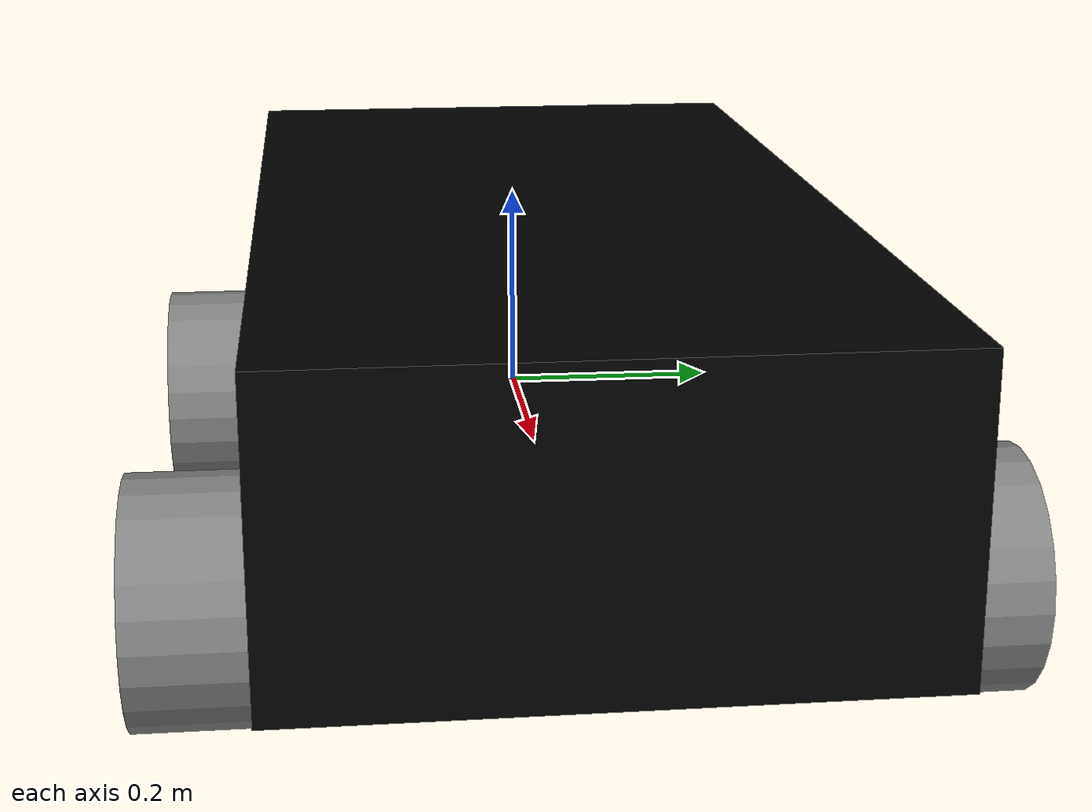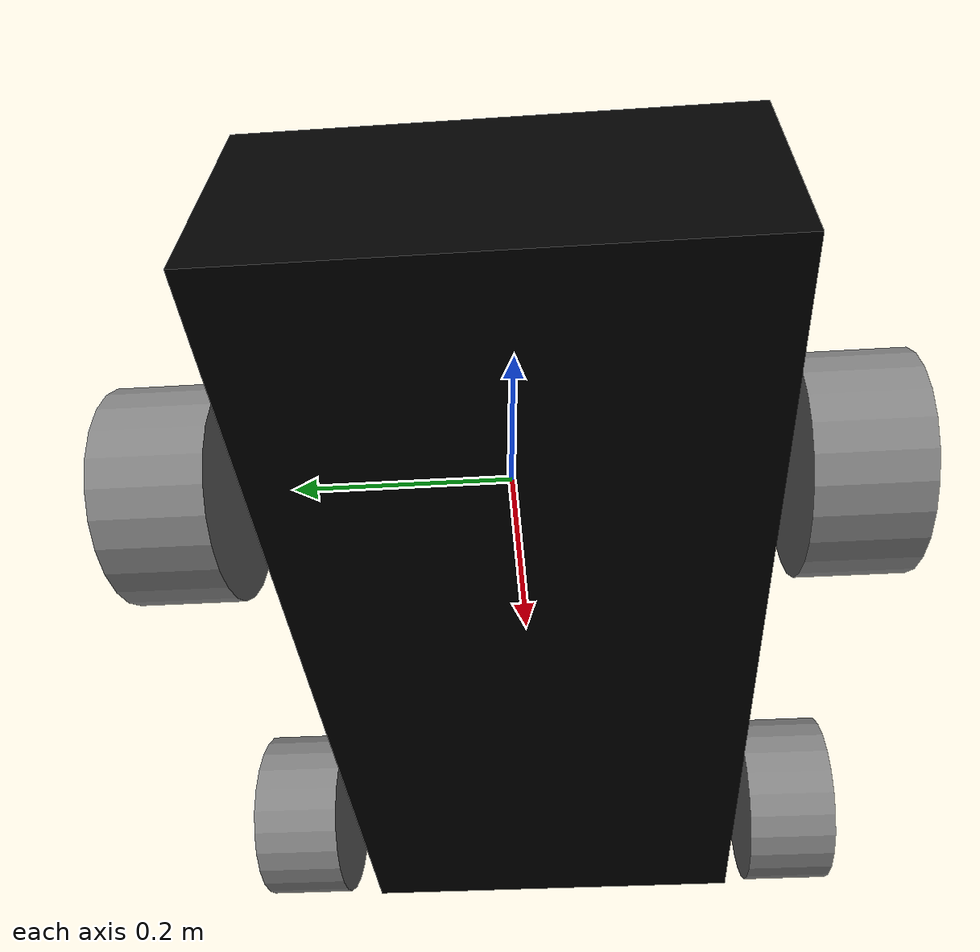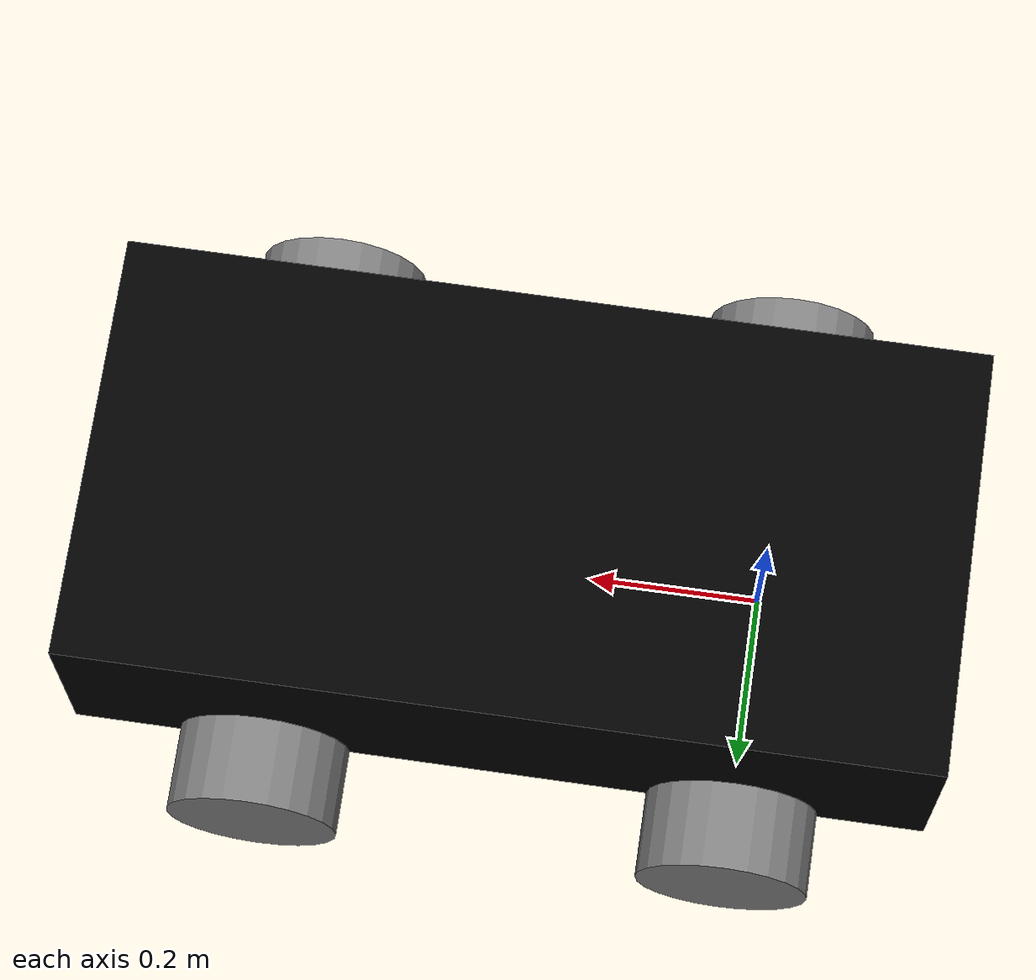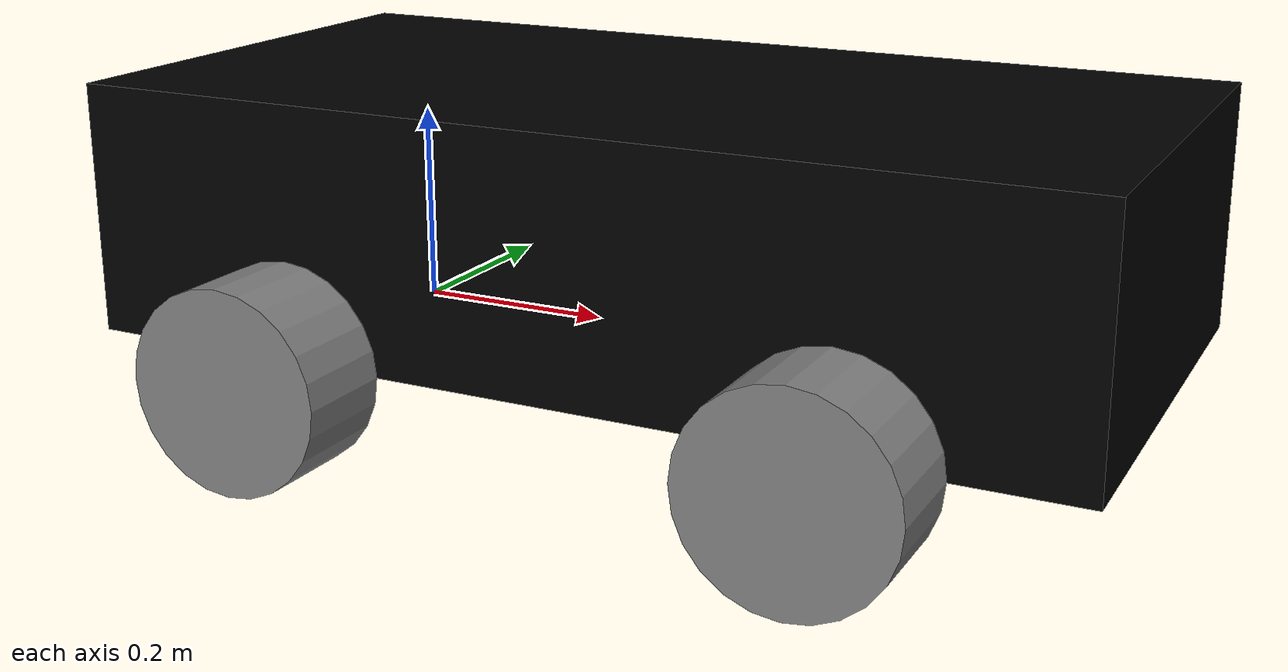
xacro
<?xml version="1.0"?>

<robot xmlns:xacro="http://ros.org/wiki/xacro">

  <xacro:include filename="inertial_macros.xacro"/>
  <xacro:include filename="materials.xacro"/>

  <link name="base_link"/>

  <link name="base_footprint">
  </link>
  <joint name="base_footprint_joint" type="fixed">
    <parent link="base_link"/>
    <child link="base_footprint"/>
    <origin xyz="0 0 0" rpy="0 0 0"/>
  </joint>

  <link name="chassis">
    <visual>
      <origin xyz="0.375 0 0.125"/>
      <geometry>
        <box size="1 0.5 0.25"/>
      </geometry>
      <material name="black"/>
    </visual>
    <collision>
      <origin xyz="0.375 0 0.125"/>
      <geometry>
        <box size="1 0.5 0.25"/>
      </geometry>
    </collision>
    <xacro:inertial_box mass="2" x="1" y="0.5" z="0.25">
      <origin xyz="0.375 0 0.125" rpy="0 0 0"/>
    </xacro:inertial_box>
  </link>
  <joint name="chassis_joint" type="fixed">
    <parent link="base_link"/>
    <child link="chassis"/>
    <origin xyz="-0.1 0 0"/>
  </joint>

  <link name="rear_left_wheel">
    <visual>
      <geometry>
        <cylinder radius="0.1" length="0.1"/>
      </geometry>
      <material name="gray"/>
    </visual>
    <collision>
      <geometry>
        <cylinder radius="0.1" length="0.1"/>
      </geometry>
    </collision>
    <xacro:inertial_cylinder mass="0.1" radius="0.1" length="0.1">
      <origin xyz="0 0 0" rpy="0 0 0"/>
    </xacro:inertial_cylinder>
  </link>
  <joint name="rear_left_wheel_joint" type="continuous">
    <parent link="base_link"/>
    <child link="rear_left_wheel"/>
    <origin xyz="0 0.3 0" rpy="-${pi/2} 0 0"/>
    <axis xyz="0 0 1"/>
  </joint>

  <link name="front_left_wheel">
    <visual>
      <geometry>
        <cylinder radius="0.1" length="0.1"/>
      </geometry>
      <material name="gray"/>
    </visual>
    <collision>
      <geometry>
        <cylinder radius="0.1" length="0.1"/>
      </geometry>
    </collision>
    <xacro:inertial_cylinder mass="0.1" radius="0.1" length="0.1">
      <origin xyz="0 0 0" rpy="0 0 0"/>
    </xacro:inertial_cylinder>
  </link>
  <joint name="front_left_wheel_joint" type="continuous">
    <parent link="base_link"/>
    <child link="front_left_wheel"/>
    <origin xyz="0.55 0.3 0" rpy="-${pi/2} 0 0"/>
    <axis xyz="0 0 1"/>
  </joint>

  <link name="front_right_wheel">
    <visual>
      <geometry>
        <cylinder radius="0.1" length="0.1"/>
      </geometry>
      <material name="gray"/>
    </visual>
    <collision>
      <geometry>
        <cylinder radius="0.1" length="0.1"/>
      </geometry>
    </collision>
    <xacro:inertial_cylinder mass="0.1" radius="0.1" length="0.1">
      <origin xyz="0 0 0" rpy="0 0 0"/>
    </xacro:inertial_cylinder>
  </link>
  <joint name="front_right_wheel_joint" type="continuous">
    <parent link="base_link"/>
    <child link="front_right_wheel"/>
    <origin xyz="0.55 -0.3 0" rpy="${pi/2} 0 0"/>
    <axis xyz="0 0 -1"/>
  </joint>

  <link name="rear_right_wheel">
    <visual>
      <geometry>
        <cylinder radius="0.1" length="0.1"/>
      </geometry>
      <material name="gray"/>
    </visual>
    <collision>
      <geometry>
        <cylinder radius="0.1" length="0.1"/>
      </geometry>
    </collision>
    <xacro:inertial_cylinder mass="0.1" radius="0.1" length="0.1">
      <origin xyz="0 0 0" rpy="0 0 0"/>
    </xacro:inertial_cylinder>
  </link>
  <joint name="rear_right_wheel_joint" type="continuous">
    <parent link="base_link"/>
    <child link="rear_right_wheel"/>
    <origin xyz="0 -0.3 0" rpy="${pi/2} 0 0"/>
    <axis xyz="0 0 -1"/>
  </joint>

</robot>

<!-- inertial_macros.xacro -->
<robot xmlns:xacro="http://ros.org/wiki/xacro">

  <!-- https://en.wikipedia.org/wiki/List_of_moments_of_inertia -->

  <xacro:macro name="inertial_box" params="mass x y z *origin">
    <inertial>
      <xacro:insert_block name="origin"/>
      <mass value="${mass}"/>
      <inertia
        ixx="${(1/12) * mass * (y*y+z*z)}"
        ixy="0.0"
        ixz="0.0"
        iyy="${(1/12) * mass * (x*x+z*z)}"
        iyz="0.0"
        izz="${(1/12) * mass * (x*x+y*y)}"
      />
    </inertial>
  </xacro:macro>

  <xacro:macro name="inertial_cylinder" params="mass radius length *origin">
    <inertial>
      <xacro:insert_block name="origin"/>
      <mass value="${mass}"/>
      <inertia
        ixx="${(1/12) * mass * (3*radius*radius + length*length)}"
        ixy="0.0"
        ixz="0.0"
        iyy="${(1/12) * mass * (3*radius*radius + length*length)}"
        iyz="0.0"
        izz="${(1/2) * mass * (radius*radius)}"
      />
    </inertial>
  </xacro:macro>

</robot>

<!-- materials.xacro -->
<robot xmlns:xacro="http://ros.org/wiki/xacro">

  <material name="blue">
    <color rgba="0.2 0.2 1 1"/>
  </material>

  <material name="gray">
    <color rgba="0.5 0.5 0.5 1"/>
  </material>

  <material name="purple_dark">
    <color rgba="0.2 0 0.4 1"/>
  </material>

  <material name="black">
    <color rgba="0 0 0 1"/>
  </material>

</robot>
